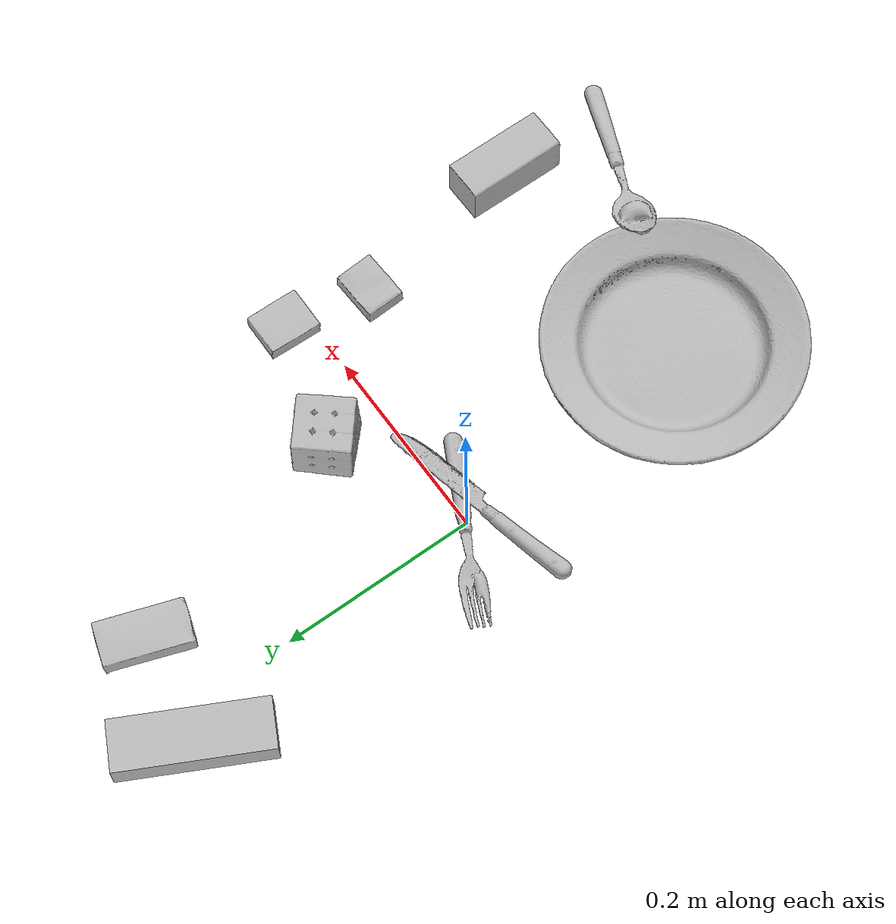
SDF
<sdf version="1.4">
  <world name="default">
    <light name="light1" type="point">
      <pose>0 0 1 0 0 0</pose>
      <diffuse>3 3 3 1</diffuse>
      <specular>3 3 3 1</specular>
    </light>
    <light name="light2" type="point">
      <pose>0 0.5 2 0 0 0</pose>
      <diffuse>1 1 1 1</diffuse>
      <specular>1 1 1 1</specular>
    </light>
    <light name="light3" type="point">
      <pose>0 0.5 2 0 0 0</pose>
      <diffuse>3 3 3 1</diffuse>
      <specular>3 3 3 1</specular>
    </light>
    <scene>
      <ambient>0.7 0.7 0.7</ambient>
    </scene>
    <model name="box11">
      <link name="link_box11">
        <collision name="default">
          <geometry>
            <mesh>
              <uri>model://pudding_box/collision_meshes/collision.obj</uri>
              <scale>0.5 0.5 0.5</scale>
            </mesh>
          </geometry>
          <surface>
            <friction>
              <ode>
                <mu>0.5</mu>
                <mu2>0.5</mu2>
              </ode>
            </friction>
          <contact>
        <ode>
            <max_vel>0</max_vel>
            <min_depth>0.0001</min_depth>
            <kp>1e8</kp>
        </ode>
    </contact></surface>
        </collision>
        <visual name="default">
          <geometry>
            <mesh>
              <uri>model://pudding_box/visual_meshes/visual.dae</uri>
              <scale>0.5 0.5 0.5</scale>
            </mesh>
          </geometry>
        </visual>
        <inertial>
          <mass>0.05641884729266167</mass>
          <pose>0.00024474109522998333 0.000403394311433658 -0.00025944141088984907 0.005213101771016666 -0.006603799659696515 0.020079828883224148</pose>
          <inertia>
            <ixx>1.5944652e-05</ixx>
            <iyy>1.0727675e-05</iyy>
            <izz>2.3546443e-05</izz>
            <ixy>0</ixy>
            <ixz>0</ixz>
            <iyz>0</iyz>
          </inertia>
        </inertial>
      </link>
      <pose>0.26669055223464966 0.024739569053053856 0.00986290443688631 0.022348583703364667 -0.011391679420132259 -0.007946584469867344</pose>
    </model>
    <model name="box12">
      <link name="link_box12">
        <collision name="default">
          <geometry>
            <mesh>
              <uri>model://wood_block/collision_meshes/collision.obj</uri>
              <scale>0.5 0.5 0.5</scale>
            </mesh>
          </geometry>
          <surface>
            <friction>
              <ode>
                <mu>0.5</mu>
                <mu2>0.5</mu2>
              </ode>
            </friction>
          <contact>
        <ode>
            <max_vel>0</max_vel>
            <min_depth>0.0001</min_depth>
            <kp>1e8</kp>
        </ode>
    </contact></surface>
        </collision>
        <visual name="default">
          <geometry>
            <mesh>
              <uri>model://wood_block/visual_meshes/visual.dae</uri>
              <scale>0.5 0.5 0.5</scale>
            </mesh>
          </geometry>
        </visual>
        <inertial>
          <mass>0.1445801854133606</mass>
          <pose>-2.906657982748584e-06 -0.000285404734313488 0.00013204291462898254 -0.052208162951624955 -0.0051926954609686745 -0.006861377578377277</pose>
          <inertia>
            <ixx>4.836754e-05</ixx>
            <iyy>0.0001527931</iyy>
            <izz>0.00015222155</izz>
            <ixy>0</ixy>
            <ixz>0</ixz>
            <iyz>0</iyz>
          </inertia>
        </inertial>
      </link>
      <pose>0.27839764952659607 -0.24619582295417786 0.022629264742136 -0.005208545241253156 0.005718734922828388 -1.5671849297761333</pose>
    </model>
    <model name="box13">
      <link name="link_box13">
        <collision name="default">
          <geometry>
            <mesh>
              <uri>model://sugar_box/collision_meshes/collision.obj</uri>
              <scale>0.5 0.5 0.5</scale>
            </mesh>
          </geometry>
          <surface>
            <friction>
              <ode>
                <mu>0.5</mu>
                <mu2>0.5</mu2>
              </ode>
            </friction>
          <contact>
        <ode>
            <max_vel>0</max_vel>
            <min_depth>0.0001</min_depth>
            <kp>1e8</kp>
        </ode>
    </contact></surface>
        </collision>
        <visual name="default">
          <geometry>
            <mesh>
              <uri>model://sugar_box/visual_meshes/visual.dae</uri>
              <scale>0.5 0.5 0.5</scale>
            </mesh>
          </geometry>
        </visual>
        <inertial>
          <mass>0.1187032163143158</mass>
          <pose>0.0005171863595023751 1.924554817378521e-05 -0.00018182402709499002 -0.0004046259512710581 0.0010506635216588768 0.002615378556274426</pose>
          <inertia>
            <ixx>2.4725794e-05</ixx>
            <iyy>7.991886e-05</iyy>
            <izz>9.567241e-05</izz>
            <ixy>0</ixy>
            <ixz>0</ixz>
            <iyz>0</iyz>
          </inertia>
        </inertial>
      </link>
      <pose>0.07978510111570358 0.3042512834072113 0.011399303562939167 0.0007754413517358485 -0.023432690978867198 1.2462999448084235</pose>
    </model>
    <model name="box21">
      <link name="link_box21">
        <collision name="default">
          <geometry>
            <mesh>
              <uri>model://jenga/collision_meshes/collision.obj</uri>
              <scale>1.0 1.0 1.0</scale>
            </mesh>
          </geometry>
          <surface>
            <friction>
              <ode>
                <mu>0.5</mu>
                <mu2>0.5</mu2>
              </ode>
            </friction>
          <contact>
        <ode>
            <max_vel>0</max_vel>
            <min_depth>0.0001</min_depth>
            <kp>1e8</kp>
        </ode>
    </contact></surface>
        </collision>
        <visual name="default">
          <geometry>
            <mesh>
              <uri>model://jenga/visual_meshes/visual.dae</uri>
              <scale>1.0 1.0 1.0</scale>
            </mesh>
          </geometry>
        </visual>
        <inertial>
          <mass>0.20898528397083282</mass>
          <pose>-2.502855807051674e-07 -0.00010250010382151231 -4.092339804628864e-05 0.0 -7.342154049184251e-07 0.0</pose>
          <inertia>
            <ixx>5.7831294e-05</ixx>
            <iyy>0.0003918633</iyy>
            <izz>0.00041834736</izz>
            <ixy>0</ixy>
            <ixz>0</ixz>
            <iyz>0</iyz>
          </inertia>
        </inertial>
      </link>
      <pose>-0.02906767465174198 0.3226681351661682 0.014999995939433575 -1.2537853643241345e-08 -9.488565836325223e-09 -2.0465682478609883</pose>
    </model>
    <model name="box22">
      <link name="link_box22">
        <collision name="default">
          <geometry>
            <mesh>
              <uri>model://rubiks_cube/collision_meshes/collision.obj</uri>
              <scale>1.0 1.0 1.0</scale>
            </mesh>
          </geometry>
          <surface>
            <friction>
              <ode>
                <mu>0.5</mu>
                <mu2>0.5</mu2>
              </ode>
            </friction>
          <contact>
        <ode>
            <max_vel>0</max_vel>
            <min_depth>0.0001</min_depth>
            <kp>1e8</kp>
        </ode>
    </contact></surface>
        </collision>
        <visual name="default">
          <geometry>
            <mesh>
              <uri>model://rubiks_cube/visual_meshes/visual.dae</uri>
              <scale>1.0 1.0 1.0</scale>
            </mesh>
          </geometry>
        </visual>
        <inertial>
          <mass>0.28698527812957764</mass>
          <pose>2.6721041649580002e-05 5.2569666877388954e-05 -7.2643156272533815e-06 -0.05467256881712973 -0.09813902151902686 -0.034455808755049874</pose>
          <inertia>
            <ixx>0.00015857864</ixx>
            <iyy>0.00015783912</iyy>
            <izz>0.00015989273</izz>
            <ixy>0</ixy>
            <ixz>0</ixz>
            <iyz>0</iyz>
          </inertia>
        </inertial>
      </link>
      <pose>0.14023007452487946 0.06212404742836952 0.02867896296083927 -3.6188435119044672e-06 -1.1126412432986098e-06 2.4268798971088916</pose>
    </model>
    <model name="box23">
      <link name="link_box23">
        <collision name="default">
          <geometry>
            <mesh>
              <uri>model://cracker_box/collision_meshes/collision.obj</uri>
              <scale>0.25 0.25 0.25</scale>
            </mesh>
          </geometry>
          <surface>
            <friction>
              <ode>
                <mu>0.5</mu>
                <mu2>0.5</mu2>
              </ode>
            </friction>
          <contact>
        <ode>
            <max_vel>0</max_vel>
            <min_depth>0.0001</min_depth>
            <kp>1e8</kp>
        </ode>
    </contact></surface>
        </collision>
        <visual name="default">
          <geometry>
            <mesh>
              <uri>model://cracker_box/visual_meshes/visual.dae</uri>
              <scale>0.25 0.25 0.25</scale>
            </mesh>
          </geometry>
        </visual>
        <inertial>
          <mass>0.04468085244297981</mass>
          <pose>0.00023660414444748312 6.358561222441494e-05 -0.0004257383698131889 -0.0003162076226327385 -0.011106488669128663 0.0025467943033026423</pose>
          <inertia>
            <ixx>7.10301e-06</ixx>
            <iyy>1.1728463e-05</iyy>
            <izz>1.6737597e-05</izz>
            <ixy>0</ixy>
            <ixz>0</ixz>
            <iyz>0</iyz>
          </inertia>
        </inertial>
      </link>
      <pose>0.25107190012931824 -0.06468630582094193 0.009096026420593262 -0.014050502705328143 -0.00501659735398834 0.045922594062405786</pose>
    </model>
    <model name="plate1">
      <link name="link_plate1">
        <collision name="default">
          <geometry>
            <mesh>
              <uri>model://plate/collision_meshes/collision.obj</uri>
              <scale>1.0 1.0 1.0</scale>
            </mesh>
          </geometry>
          <surface>
            <friction>
              <ode>
                <mu>0.5</mu>
                <mu2>0.5</mu2>
              </ode>
            </friction>
          <contact>
        <ode>
            <max_vel>0</max_vel>
            <min_depth>0.0001</min_depth>
            <kp>1e8</kp>
        </ode>
    </contact></surface>
        </collision>
        <visual name="default">
          <geometry>
            <mesh>
              <uri>model://plate/visual_meshes/visual.dae</uri>
              <scale>1.0 1.0 1.0</scale>
            </mesh>
          </geometry>
        </visual>
        <inertial>
          <mass>0.20184239745140076</mass>
          <pose>-0.0006044648471288383 0.00027825962752103806 -0.0010561983799561858 0.0022188105697194356 -0.003225466439192432 0.4526020757977656</pose>
          <inertia>
            <ixx>0.00094422296</ixx>
            <iyy>0.00093519164</iyy>
            <izz>0.0018467589</izz>
            <ixy>0</ixy>
            <ixz>0</ixz>
            <iyz>0</iyz>
          </inertia>
        </inertial>
      </link>
      <pose>0.029817858710885048 -0.2657276690006256 0.013732999563217163 -9.602389771791451e-09 -1.3606365739526412e-08 -1.9666555383479047</pose>
    </model>
    <model name="silverware1">
      <link name="link_silverware1">
        <collision name="default">
          <geometry>
            <mesh>
              <uri>model://fork/collision_meshes/collision.obj</uri>
              <scale>1.0 1.0 1.0</scale>
            </mesh>
          </geometry>
          <surface>
            <friction>
              <ode>
                <mu>0.5</mu>
                <mu2>0.5</mu2>
              </ode>
            </friction>
          <contact>
        <ode>
            <max_vel>0</max_vel>
            <min_depth>0.0001</min_depth>
            <kp>1e8</kp>
        </ode>
    </contact></surface>
        </collision>
        <visual name="default">
          <geometry>
            <mesh>
              <uri>model://fork/visual_meshes/visual.dae</uri>
              <scale>1.0 1.0 1.0</scale>
            </mesh>
          </geometry>
        </visual>
        <inertial>
          <mass>0.03151825815439224</mass>
          <pose>-0.029570046812295914 0.00046588233090005815 0.0003218861820641905 -0.013550990610422763 -0.010977834578584837 0.014453900606944525</pose>
          <inertia>
            <ixx>1.1048933e-06</ixx>
            <iyy>8.2285114e-05</iyy>
            <izz>8.2779305e-05</izz>
            <ixy>0</ixy>
            <ixz>0</ixz>
            <iyz>0</iyz>
          </inertia>
        </inertial>
      </link>
      <pose>-0.006533540785312653 0.006963555701076984 0.005717158317565918 -0.18263285125942763 0.02477646869757907 2.6442603328496257</pose>
    </model>
    <model name="silverware2">
      <link name="link_silverware2">
        <collision name="default">
          <geometry>
            <mesh>
              <uri>model://spoon/collision_meshes/collision.obj</uri>
              <scale>1.0 1.0 1.0</scale>
            </mesh>
          </geometry>
          <surface>
            <friction>
              <ode>
                <mu>0.5</mu>
                <mu2>0.5</mu2>
              </ode>
            </friction>
          <contact>
        <ode>
            <max_vel>0</max_vel>
            <min_depth>0.0001</min_depth>
            <kp>1e8</kp>
        </ode>
    </contact></surface>
        </collision>
        <visual name="default">
          <geometry>
            <mesh>
              <uri>model://spoon/visual_meshes/visual.dae</uri>
              <scale>1.0 1.0 1.0</scale>
            </mesh>
          </geometry>
        </visual>
        <inertial>
          <mass>0.04083608463406563</mass>
          <pose>-0.005526324734091759 -0.001603417913429439 -0.0007271658978424966 0.03521537575369321 -0.03906582415196765 0.006150608891198343</pose>
          <inertia>
            <ixx>2.2713682e-06</ixx>
            <iyy>0.0001553799</iyy>
            <izz>0.0001565001</izz>
            <ixy>0</ixy>
            <ixz>0</ixz>
            <iyz>0</iyz>
          </inertia>
        </inertial>
      </link>
      <pose>0.21609006822109222 -0.3406892716884613 0.019117489457130432 -0.0535867285554985 -0.10922650754358834 2.7524042577608037</pose>
    </model>
    <model name="silverware3">
      <link name="link_silverware3">
        <collision name="default">
          <geometry>
            <mesh>
              <uri>model://knife/collision_meshes/collision.obj</uri>
              <scale>1.0 1.0 1.0</scale>
            </mesh>
          </geometry>
          <surface>
            <friction>
              <ode>
                <mu>0.5</mu>
                <mu2>0.5</mu2>
              </ode>
            </friction>
          <contact>
        <ode>
            <max_vel>0</max_vel>
            <min_depth>0.0001</min_depth>
            <kp>1e8</kp>
        </ode>
    </contact></surface>
        </collision>
        <visual name="default">
          <geometry>
            <mesh>
              <uri>model://knife/visual_meshes/visual.dae</uri>
              <scale>1.0 1.0 1.0</scale>
            </mesh>
          </geometry>
        </visual>
        <inertial>
          <mass>0.024411516264081</mass>
          <pose>-0.023785248398780823 0.0015275123296305537 5.062021955382079e-05 0.07305335097392199 0.01724841144103926 -0.007409823891069756</pose>
          <inertia>
            <ixx>6.9289786e-07</ixx>
            <iyy>9.37851e-05</iyy>
            <izz>9.400826e-05</izz>
            <ixy>0</ixy>
            <ixz>0</ixz>
            <iyz>0</iyz>
          </inertia>
        </inertial>
      </link>
      <pose>0.004422590136528015 -0.019599949941039085 0.013217759318649769 -0.008994376542990616 -0.06721023856615166 0.24633134548886249</pose>
    </model>
  <physics type="ode">
      <max_contacts>50</max_contacts>
      <ode>
        <solver>
          <type>quick</type>
          <iters>75</iters>
        </solver>
        <constraints>
          <contact_max_correcting_vel>0</contact_max_correcting_vel>
          <contact_surface_layer>0</contact_surface_layer>
        </constraints>
      </ode>
    </physics></world>
</sdf>
